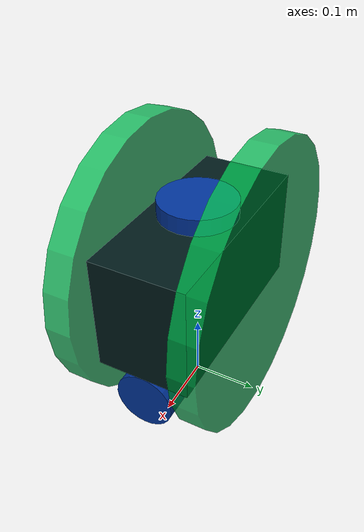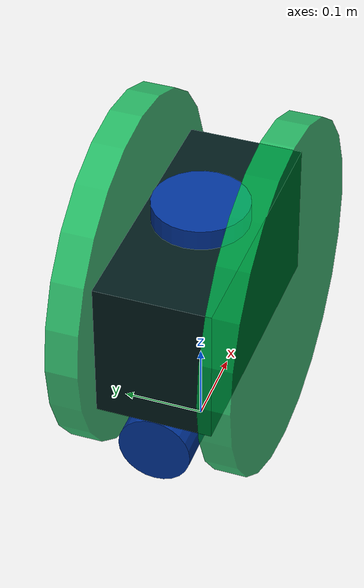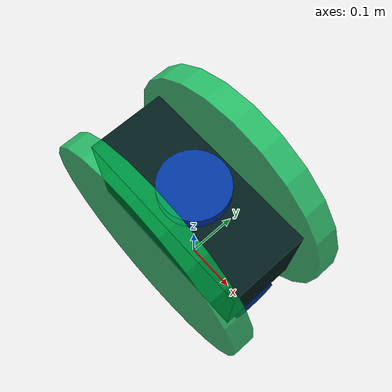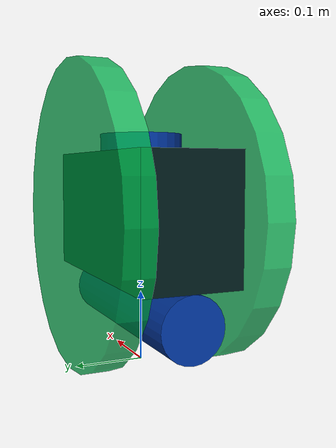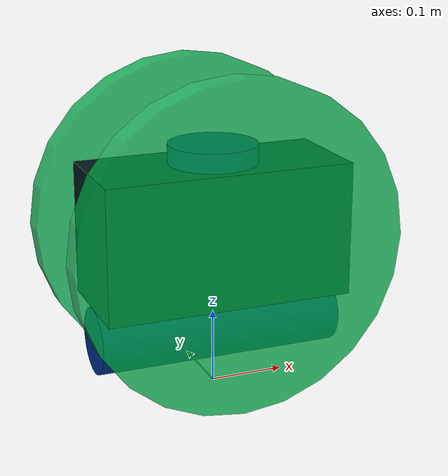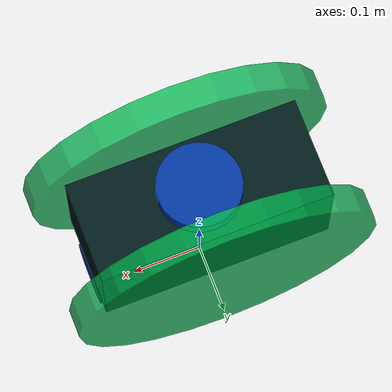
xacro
<?xml version="1.0"?>
<robot xmlns:xacro="http://www.ros.org/wiki/xacro"  name="robot">

    <xacro:include filename="inertial_macros.xacro"/>

    <xacro:property name="ratio" value="0.0254"/>
    <xacro:property name="chassis_length" value="13.00"/>
    <xacro:property name="chassis_width" value="5.5625"/>
    <xacro:property name="chassis_height" value="7.00"/>
    <xacro:property name="chassis_mass" value="3.0"/>
    <xacro:property name="valve_radius" value="1.75"/>
    <xacro:property name="wheel_radius" value="8.50"/>
    <xacro:property name="wheel_thickness" value="1.5625"/>
    <xacro:property name="wheel_mass" value="0.5"/>
    <xacro:property name="wheel_offset_x" value="0.226"/>
    <xacro:property name="wheel_offset_y" value="${chassis_width*ratio/2}"/>
    <xacro:property name="wheel_offset_z" value="${wheel_radius*ratio}"/>

    <material name="green">
        <color rgba="0 0.7 0.3 0.8" />
    </material>

    <material name="blue">
        <color rgba="0 0.2 0.6 0.9"/>
    </material>

    <material name="black">
        <color rgba="0 0.1 0.1 1"/>
    </material>

    <!-- BASE LINK -->

    <link name="base_link">

    </link>

    <!-- BASE_FOOTPRINT LINK -->

    <joint name="base_footprint_joint" type="fixed">
        <parent link="base_link"/>
        <child link="base_footprint"/>
        <origin xyz="0 0 0" rpy="0 0 0"/>
    </joint>

    <link name="base_footprint">

    </link>

    <!-- CHASSIS LINK -->

    <joint name="chassis_joint" type="fixed">
        <parent link="base_link"/>
        <child link="chassis"/>
        <origin xyz="0 0 ${wheel_offset_z}"/>
    </joint>

    <link name="chassis">
        <visual>
            <origin xyz="0 0 0"/>
            <geometry>
                <box size="${chassis_length*ratio} ${chassis_width*ratio} ${chassis_height*ratio}"/>
            </geometry>
            <material name="black"/>
        </visual>
        <collision>
            <geometry>
                <box size="${chassis_length*ratio} ${chassis_width*ratio} ${chassis_height*ratio}"/>
            </geometry>
        </collision>
        <xacro:inertial_box mass="1.18" x="${chassis_length}" y="${chassis_width}" z="${chassis_height}">
            <origin xyz="0 0 ${wheel_offset_z}" rpy="0 0 0"/>
        </xacro:inertial_box>
    </link>

    <!-- LEFT WHEEL LINK -->

    <joint name="left_wheel_joint" type="continuous">
        <parent link="chassis"/>
        <child link="left_wheel"/>
        <origin xyz="0 ${wheel_offset_y+wheel_thickness*ratio/2} 0" rpy="${-pi/2} 0 0" />
        <axis xyz="0 0 1"/>
    </joint>

    <link name="left_wheel">
        <visual>
            <geometry>
                <cylinder radius="${wheel_radius*ratio}" length="${wheel_thickness*ratio}"/>
            </geometry>
            <material name="green"/>
        </visual>
        <collision>
            <geometry>
                <sphere radius="${wheel_radius*ratio}"/>
            </geometry>
        </collision>
        <xacro:inertial_cylinder mass="${wheel_mass}" length="${wheel_thickness*ratio}" radius="${wheel_radius*ratio}">
            <origin xyz="0 0 0" rpy="0 0 0"/>
        </xacro:inertial_cylinder>
    </link>

    <!-- RIGHT WHEEL LINK -->

    <joint name="right_wheel_joint" type="continuous">
        <parent link="chassis"/>
        <child link="right_wheel"/>
        <origin xyz="0 ${-wheel_offset_y-wheel_thickness*ratio/2} 0" rpy="${pi/2} 0 0" />
        <axis xyz="0 0 -1"/>
    </joint>

    <link name="right_wheel">
        <visual>
            <geometry>
                <cylinder radius="${wheel_radius*ratio}" length="${wheel_thickness*ratio}"/>
            </geometry>
            <material name="green"/>
        </visual>
        <collision>
            <geometry>
                <sphere radius="${wheel_radius*ratio}"/>
            </geometry>
        </collision>
        <xacro:inertial_cylinder mass="${wheel_mass}" length="${wheel_thickness*ratio}" radius="${wheel_radius*ratio}">
            <origin xyz="0 0 0" rpy="0 0 0"/>
        </xacro:inertial_cylinder>
    </link>

    <!-- LIDAR LINK -->

    <joint name="laser_joint" type="fixed">
        <parent link="chassis"/>
        <child link="base_laser"/>
        <origin xyz="0 0 ${ratio*(chassis_height+1.00)/2}" rpy="0 0 0"/>
    </joint>

    <link name="base_laser">
        <visual>
            <geometry>
                <cylinder radius="${2.3125*ratio}" length="${1.00*ratio}"/>
            </geometry>
            <material name="blue"/>
        </visual>
    </link>

    <!-- VALVE LINK-->

    <joint name="valve_base_joint" type="fixed">
        <parent link="chassis"/>
        <child link="valve_frame"/>
        <origin xyz="0 0 ${-ratio*(chassis_height/2.0+valve_radius)}" rpy="0 ${pi/2.0} 0"/>
    </joint>

    <link name="valve_frame">
        <visual>
            <geometry>
                <cylinder radius="${valve_radius*ratio}" length="${chassis_length*ratio}"/>
            </geometry>
            <material name="blue"/>
        </visual>
    </link>

</robot>
